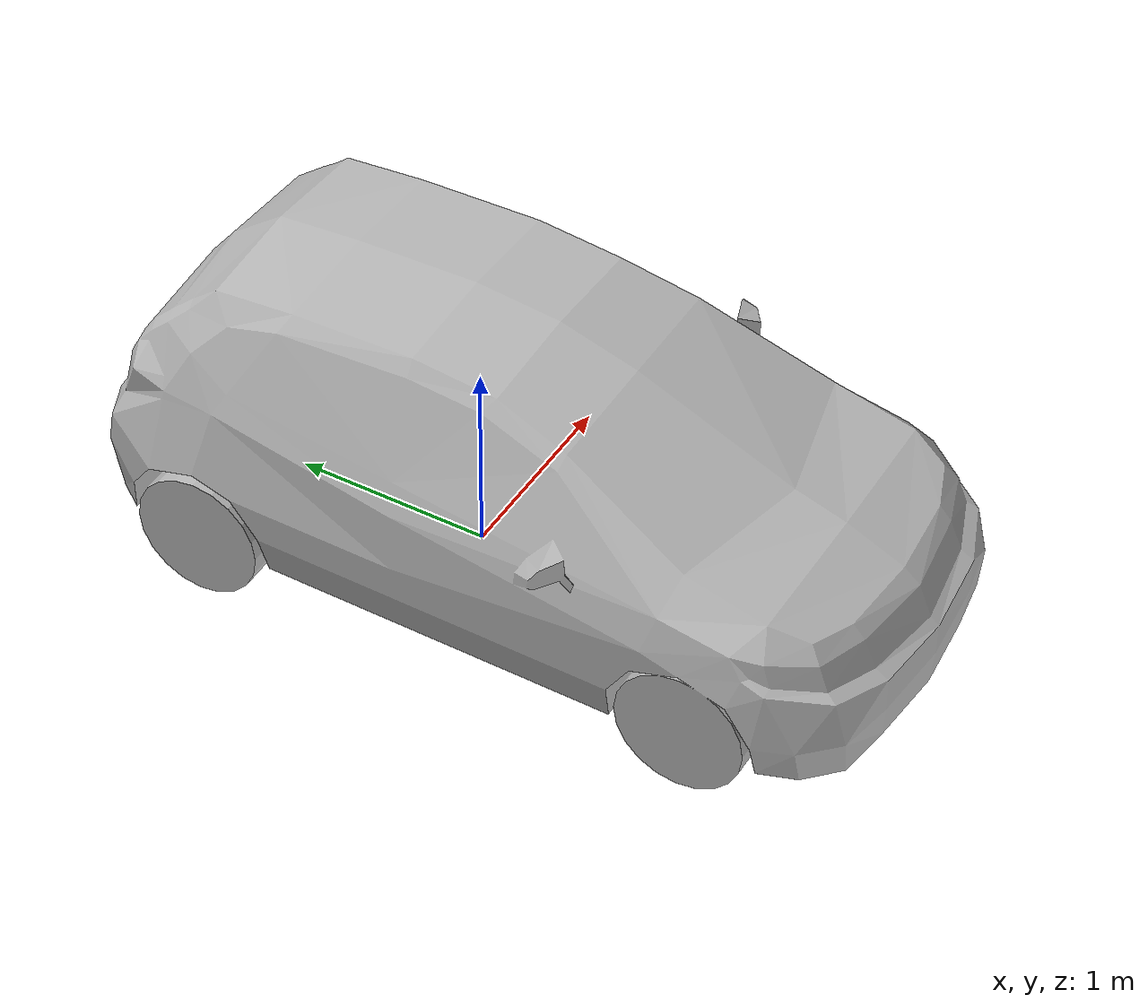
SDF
<?xml version='1.0'?>
<sdf version='1.6'>
  <model name='car_blue'>
    <model name='hatchback_blue'>
      <static>1</static>
      <link name='link'>
        <collision name='collision'>
          <pose frame=''>0 0 0 0 -0 1.5708</pose>
          <geometry>
            <mesh>
              <scale>0.0254 0.0254 0.0254</scale>
              <uri>model://hatchback_blue/meshes/hatchback.obj</uri>
            </mesh>
          </geometry>
        </collision>
        <visual name='visual'>
          <pose frame=''>0 0 0 0 -0 1.5708</pose>
          <geometry>
            <mesh>
              <scale>0.0254 0.0254 0.0254</scale>
              <uri>model://hatchback_blue/meshes/hatchback.obj</uri>
            </mesh>
          </geometry>
        </visual>
      </link>
      <pose frame=''>-5e-06 3e-06 0 0 0 -1.55362</pose>
    </model>
    <static>0</static>
    <allow_auto_disable>1</allow_auto_disable>
  </model>
</sdf>
